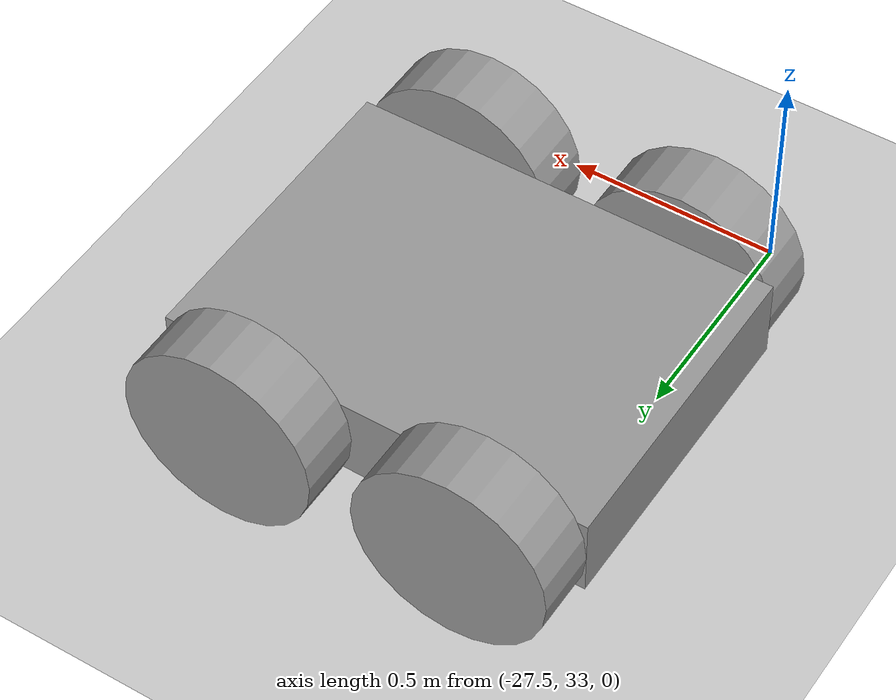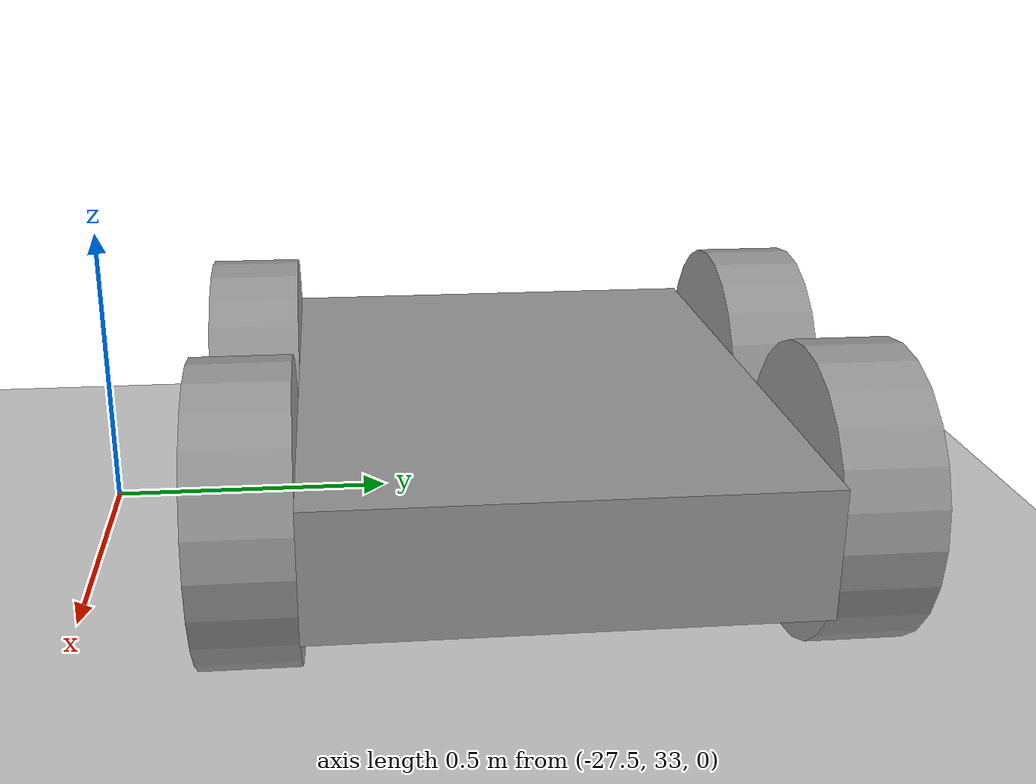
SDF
<sdf version="1.6">
 <world name="default">
  <model name="ground_plane">
   <static>1</static>
   <link name="link">
    <collision name="collision">
     <geometry><plane><normal>0 0 1</normal><size>100 100</size></plane></geometry>
     <surface><friction><ode><mu>100</mu><mu2>50</mu2></ode></friction></surface>
    </collision>
    <visual name="visual">
     <cast_shadows>0</cast_shadows>
     <geometry><plane><normal>0 0 1</normal><size>100 100</size></plane></geometry>
     <material>
      <script><uri>file://media/materials/scripts/gazebo.material</uri><name>Gazebo/Grey</name></script>
     </material>
    </visual>
   </link>
  </model>
  <model name="fourWheelRobot">
   <link name="link_0">
    <pose>-0 -2e-06 0 0 -0 0</pose>
    <inertial>
     <mass>0.144047</mass>
     <inertia>
      <ixx>0.00696042</ixx>
      <ixy>0</ixy>
      <ixz>0</ixz>
      <iyy>0.0124639</iyy>
      <iyz>0</iyz>
      <izz>0.0185044</izz>
     </inertia>
    </inertial>
    <visual name="visual">
     <geometry><box><size>1 0.735885 0.195744</size></box></geometry>
     <material>
      <lighting>1</lighting>
      <script><uri>file://media/materials/scripts/gazebo.material</uri><name>Gazebo/Grey</name></script>
      <ambient>0.3 0.3 0.3 1</ambient>
      <diffuse>0.7 0.7 0.7 1</diffuse>
      <specular>0.01 0.01 0.01 1</specular>
      <emissive>0 0 0 1</emissive>
      <shader type="vertex"><normal_map>__default__</normal_map></shader>
     </material>
    </visual>
    <collision name="collision">
     <geometry><box><size>1 0.735885 0.195744</size></box></geometry>
     <surface>
      <friction>
       <ode><mu>1</mu><mu2>1</mu2><fdir1>0 0 0</fdir1><slip1>0</slip1><slip2>0</slip2></ode>
       <torsional>
        <coefficient>1</coefficient>
        <patch_radius>0</patch_radius>
        <surface_radius>0</surface_radius>
        <use_patch_radius>1</use_patch_radius>
        <ode><slip>0</slip></ode>
       </torsional>
      </friction>
      <bounce><restitution_coefficient>0</restitution_coefficient><threshold>1e+06</threshold></bounce>
      <contact>
       <collide_without_contact>0</collide_without_contact>
       <collide_without_contact_bitmask>1</collide_without_contact_bitmask>
       <collide_bitmask>1</collide_bitmask>
       <ode>
        <soft_cfm>0</soft_cfm>
        <soft_erp>0.2</soft_erp>
        <kp>1e+13</kp>
        <kd>1</kd>
        <max_vel>0.01</max_vel>
        <min_depth>0</min_depth>
       </ode>
       <bullet>
        <split_impulse>1</split_impulse>
        <split_impulse_penetration_threshold>-0.01</split_impulse_penetration_threshold>
        <soft_cfm>0</soft_cfm>
        <soft_erp>0.2</soft_erp>
        <kp>1e+13</kp>
        <kd>1</kd>
       </bullet>
      </contact>
     </surface>
    </collision>
   </link>
   <link name="link_1">
    <pose>0.274181 0.442046 0 1.5708 -0 0</pose>
    <inertial>
     <mass>0.0302309</mass>
     <inertia>
      <ixx>0.00044074</ixx>
      <ixy>0</ixy>
      <ixz>0</ixz>
      <iyy>0.00044074</iyy>
      <iyz>0</iyz>
      <izz>0.00077081</izz>
     </inertia>
    </inertial>
    <visual name="visual">
     <geometry><cylinder><radius>0.225819</radius><length>0.148206</length></cylinder></geometry>
     <material>
      <lighting>1</lighting>
      <script><uri>file://media/materials/scripts/gazebo.material</uri><name>Gazebo/Grey</name></script>
      <ambient>0.3 0.3 0.3 1</ambient>
      <diffuse>0.7 0.7 0.7 1</diffuse>
      <specular>0.01 0.01 0.01 1</specular>
      <emissive>0 0 0 1</emissive>
      <shader type="vertex"><normal_map>__default__</normal_map></shader>
     </material>
    </visual>
    <collision name="collision">
     <geometry><cylinder><radius>0.225819</radius><length>0.148206</length></cylinder></geometry>
     <surface>
      <friction>
       <ode><mu>1</mu><mu2>1</mu2><fdir1>0 0 0</fdir1><slip1>0</slip1><slip2>0</slip2></ode>
       <torsional>
        <coefficient>1</coefficient>
        <patch_radius>0</patch_radius>
        <surface_radius>0</surface_radius>
        <use_patch_radius>1</use_patch_radius>
        <ode><slip>0</slip></ode>
       </torsional>
      </friction>
      <bounce><restitution_coefficient>0</restitution_coefficient><threshold>1e+06</threshold></bounce>
      <contact>
       <collide_without_contact>0</collide_without_contact>
       <collide_without_contact_bitmask>1</collide_without_contact_bitmask>
       <collide_bitmask>1</collide_bitmask>
       <ode>
        <soft_cfm>0</soft_cfm>
        <soft_erp>0.2</soft_erp>
        <kp>1e+13</kp>
        <kd>1</kd>
        <max_vel>0.01</max_vel>
        <min_depth>0</min_depth>
       </ode>
       <bullet>
        <split_impulse>1</split_impulse>
        <split_impulse_penetration_threshold>-0.01</split_impulse_penetration_threshold>
        <soft_cfm>0</soft_cfm>
        <soft_erp>0.2</soft_erp>
        <kp>1e+13</kp>
        <kd>1</kd>
       </bullet>
      </contact>
     </surface>
    </collision>
   </link>
   <link name="link_1_clone">
    <pose>-0.274182 0.442046 0 1.5708 -0 0</pose>
    <inertial>
     <mass>0.0302309</mass>
     <inertia>
      <ixx>0.00044074</ixx>
      <ixy>0</ixy>
      <ixz>0</ixz>
      <iyy>0.00044074</iyy>
      <iyz>0</iyz>
      <izz>0.00077081</izz>
     </inertia>
    </inertial>
    <visual name="visual">
     <geometry><cylinder><radius>0.225819</radius><length>0.148206</length></cylinder></geometry>
     <material>
      <lighting>1</lighting>
      <script><uri>file://media/materials/scripts/gazebo.material</uri><name>Gazebo/Grey</name></script>
      <ambient>0.3 0.3 0.3 1</ambient>
      <diffuse>0.7 0.7 0.7 1</diffuse>
      <specular>0.01 0.01 0.01 1</specular>
      <emissive>0 0 0 1</emissive>
      <shader type="vertex"><normal_map>__default__</normal_map></shader>
     </material>
    </visual>
    <collision name="collision">
     <geometry><cylinder><radius>0.225819</radius><length>0.148206</length></cylinder></geometry>
     <surface>
      <friction>
       <ode><mu>1</mu><mu2>1</mu2><fdir1>0 0 0</fdir1><slip1>0</slip1><slip2>0</slip2></ode>
       <torsional>
        <coefficient>1</coefficient>
        <patch_radius>0</patch_radius>
        <surface_radius>0</surface_radius>
        <use_patch_radius>1</use_patch_radius>
        <ode><slip>0</slip></ode>
       </torsional>
      </friction>
      <bounce><restitution_coefficient>0</restitution_coefficient><threshold>1e+06</threshold></bounce>
      <contact>
       <collide_without_contact>0</collide_without_contact>
       <collide_without_contact_bitmask>1</collide_without_contact_bitmask>
       <collide_bitmask>1</collide_bitmask>
       <ode>
        <soft_cfm>0</soft_cfm>
        <soft_erp>0.2</soft_erp>
        <kp>1e+13</kp>
        <kd>1</kd>
        <max_vel>0.01</max_vel>
        <min_depth>0</min_depth>
       </ode>
       <bullet>
        <split_impulse>1</split_impulse>
        <split_impulse_penetration_threshold>-0.01</split_impulse_penetration_threshold>
        <soft_cfm>0</soft_cfm>
        <soft_erp>0.2</soft_erp>
        <kp>1e+13</kp>
        <kd>1</kd>
       </bullet>
      </contact>
     </surface>
    </collision>
   </link>
   <link name="link_1_clone_0">
    <pose>-0.274182 -0.442049 0 1.5708 -0 0</pose>
    <inertial>
     <mass>0.0302309</mass>
     <inertia>
      <ixx>0.00044074</ixx>
      <ixy>0</ixy>
      <ixz>0</ixz>
      <iyy>0.00044074</iyy>
      <iyz>0</iyz>
      <izz>0.00077081</izz>
     </inertia>
    </inertial>
    <visual name="visual">
     <geometry><cylinder><radius>0.225819</radius><length>0.148206</length></cylinder></geometry>
     <material>
      <lighting>1</lighting>
      <script><uri>file://media/materials/scripts/gazebo.material</uri><name>Gazebo/Grey</name></script>
      <ambient>0.3 0.3 0.3 1</ambient>
      <diffuse>0.7 0.7 0.7 1</diffuse>
      <specular>0.01 0.01 0.01 1</specular>
      <emissive>0 0 0 1</emissive>
      <shader type="vertex"><normal_map>__default__</normal_map></shader>
     </material>
    </visual>
    <collision name="collision">
     <geometry><cylinder><radius>0.225819</radius><length>0.148206</length></cylinder></geometry>
     <surface>
      <friction>
       <ode><mu>1</mu><mu2>1</mu2><fdir1>0 0 0</fdir1><slip1>0</slip1><slip2>0</slip2></ode>
       <torsional>
        <coefficient>1</coefficient>
        <patch_radius>0</patch_radius>
        <surface_radius>0</surface_radius>
        <use_patch_radius>1</use_patch_radius>
        <ode><slip>0</slip></ode>
       </torsional>
      </friction>
      <bounce><restitution_coefficient>0</restitution_coefficient><threshold>1e+06</threshold></bounce>
      <contact>
       <collide_without_contact>0</collide_without_contact>
       <collide_without_contact_bitmask>1</collide_without_contact_bitmask>
       <collide_bitmask>1</collide_bitmask>
       <ode>
        <soft_cfm>0</soft_cfm>
        <soft_erp>0.2</soft_erp>
        <kp>1e+13</kp>
        <kd>1</kd>
        <max_vel>0.01</max_vel>
        <min_depth>0</min_depth>
       </ode>
       <bullet>
        <split_impulse>1</split_impulse>
        <split_impulse_penetration_threshold>-0.01</split_impulse_penetration_threshold>
        <soft_cfm>0</soft_cfm>
        <soft_erp>0.2</soft_erp>
        <kp>1e+13</kp>
        <kd>1</kd>
       </bullet>
      </contact>
     </surface>
    </collision>
   </link>
   <link name="link_1_clone_1">
    <pose>0.274181 -0.442049 0 1.5708 -0 0</pose>
    <inertial>
     <mass>0.0302309</mass>
     <inertia>
      <ixx>0.00044074</ixx>
      <ixy>0</ixy>
      <ixz>0</ixz>
      <iyy>0.00044074</iyy>
      <iyz>0</iyz>
      <izz>0.00077081</izz>
     </inertia>
    </inertial>
    <visual name="visual">
     <geometry><cylinder><radius>0.225819</radius><length>0.148206</length></cylinder></geometry>
     <material>
      <lighting>1</lighting>
      <script><uri>file://media/materials/scripts/gazebo.material</uri><name>Gazebo/Grey</name></script>
      <ambient>0.3 0.3 0.3 1</ambient>
      <diffuse>0.7 0.7 0.7 1</diffuse>
      <specular>0.01 0.01 0.01 1</specular>
      <emissive>0 0 0 1</emissive>
      <shader type="vertex"><normal_map>__default__</normal_map></shader>
     </material>
    </visual>
    <collision name="collision">
     <geometry><cylinder><radius>0.225819</radius><length>0.148206</length></cylinder></geometry>
     <surface>
      <friction>
       <ode><mu>1</mu><mu2>1</mu2><fdir1>0 0 0</fdir1><slip1>0</slip1><slip2>0</slip2></ode>
       <torsional>
        <coefficient>1</coefficient>
        <patch_radius>0</patch_radius>
        <surface_radius>0</surface_radius>
        <use_patch_radius>1</use_patch_radius>
        <ode><slip>0</slip></ode>
       </torsional>
      </friction>
      <bounce><restitution_coefficient>0</restitution_coefficient><threshold>1e+06</threshold></bounce>
      <contact>
       <collide_without_contact>0</collide_without_contact>
       <collide_without_contact_bitmask>1</collide_without_contact_bitmask>
       <collide_bitmask>1</collide_bitmask>
       <ode>
        <soft_cfm>0</soft_cfm>
        <soft_erp>0.2</soft_erp>
        <kp>1e+13</kp>
        <kd>1</kd>
        <max_vel>0.01</max_vel>
        <min_depth>0</min_depth>
       </ode>
       <bullet>
        <split_impulse>1</split_impulse>
        <split_impulse_penetration_threshold>-0.01</split_impulse_penetration_threshold>
        <soft_cfm>0</soft_cfm>
        <soft_erp>0.2</soft_erp>
        <kp>1e+13</kp>
        <kd>1</kd>
       </bullet>
      </contact>
     </surface>
    </collision>
   </link>
   <joint name="link_0_JOINT_1" type="revolute">
    <parent>link_0</parent>
    <child>link_1</child>
    <axis>
     <xyz>0 0 1</xyz>
     <use_parent_model_frame>0</use_parent_model_frame>
     <limit>
      <lower>-1.79769e+308</lower>
      <upper>1.79769e+308</upper>
      <effort>-1</effort>
      <velocity>-1</velocity>
     </limit>
     <dynamics>
      <spring_reference>0</spring_reference>
      <spring_stiffness>0</spring_stiffness>
      <damping>0</damping>
     </dynamics>
    </axis>
    <physics>
     <ode><limit><cfm>0</cfm><erp>0.2</erp></limit><suspension><cfm>0</cfm><erp>0.2</erp></suspension></ode>
    </physics>
   </joint>
   <joint name="link_0_JOINT_2" type="revolute">
    <parent>link_0</parent>
    <child>link_1_clone</child>
    <axis>
     <xyz>0 0 1</xyz>
     <use_parent_model_frame>0</use_parent_model_frame>
     <limit>
      <lower>-1.79769e+308</lower>
      <upper>1.79769e+308</upper>
      <effort>-1</effort>
      <velocity>-1</velocity>
     </limit>
     <dynamics>
      <spring_reference>0</spring_reference>
      <spring_stiffness>0</spring_stiffness>
      <damping>0</damping>
     </dynamics>
    </axis>
    <physics>
     <ode><limit><cfm>0</cfm><erp>0.2</erp></limit><suspension><cfm>0</cfm><erp>0.2</erp></suspension></ode>
    </physics>
   </joint>
   <joint name="link_0_JOINT_3" type="revolute">
    <parent>link_0</parent>
    <child>link_1_clone_1</child>
    <axis>
     <xyz>0 0 1</xyz>
     <use_parent_model_frame>0</use_parent_model_frame>
     <limit>
      <lower>-1.79769e+308</lower>
      <upper>1.79769e+308</upper>
      <effort>-1</effort>
      <velocity>-1</velocity>
     </limit>
     <dynamics>
      <spring_reference>0</spring_reference>
      <spring_stiffness>0</spring_stiffness>
      <damping>0</damping>
     </dynamics>
    </axis>
    <physics>
     <ode><limit><cfm>0</cfm><erp>0.2</erp></limit><suspension><cfm>0</cfm><erp>0.2</erp></suspension></ode>
    </physics>
   </joint>
   <joint name="link_0_JOINT_4" type="revolute">
    <parent>link_0</parent>
    <child>link_1_clone_0</child>
    <axis>
     <xyz>0 0 1</xyz>
     <use_parent_model_frame>0</use_parent_model_frame>
     <limit>
      <lower>-1.79769e+308</lower>
      <upper>1.79769e+308</upper>
      <effort>-1</effort>
      <velocity>-1</velocity>
     </limit>
     <dynamics>
      <spring_reference>0</spring_reference>
      <spring_stiffness>0</spring_stiffness>
      <damping>0</damping>
     </dynamics>
    </axis>
    <physics>
     <ode><limit><cfm>0</cfm><erp>0.2</erp></limit><suspension><cfm>0</cfm><erp>0.2</erp></suspension></ode>
    </physics>
   </joint>
   <static>0</static>
   <pose>-27.1744 33.7221 0.225819 -1e-06 -0 -0.000124</pose>
  </model>
 </world>
</sdf>
